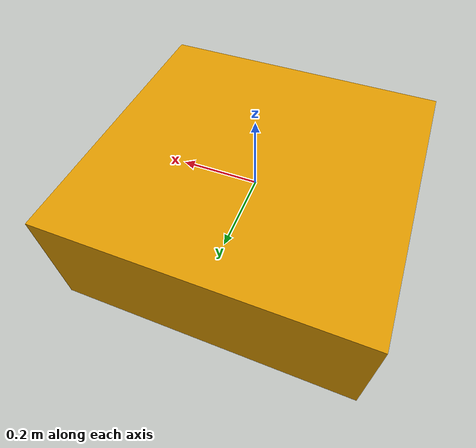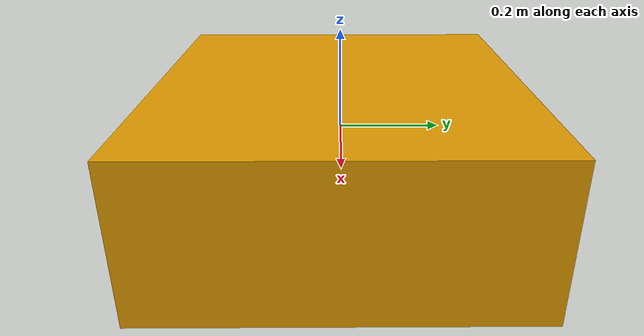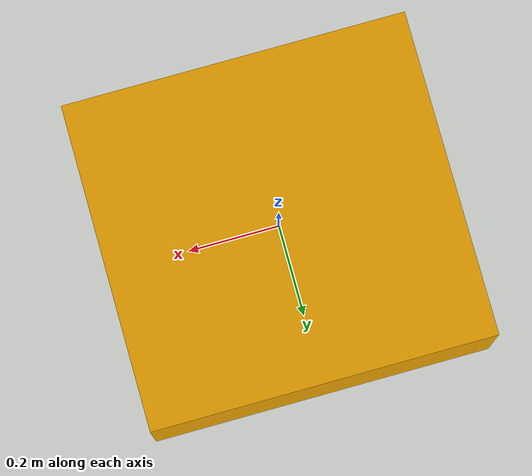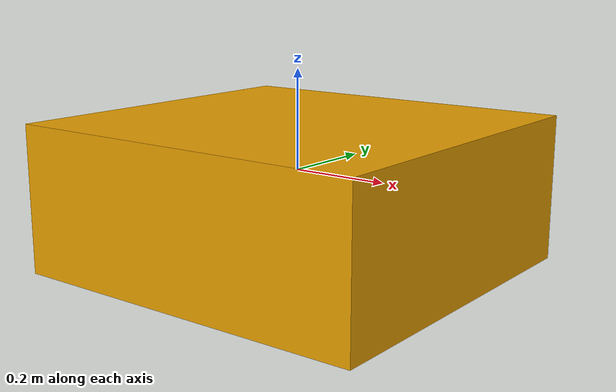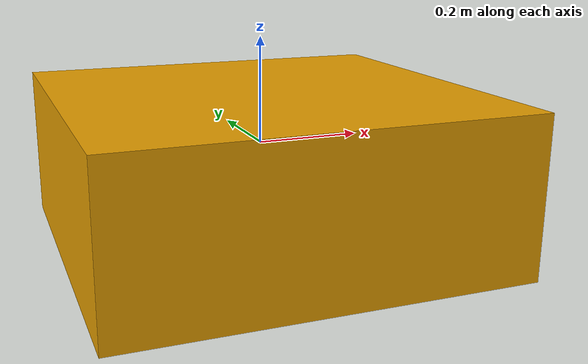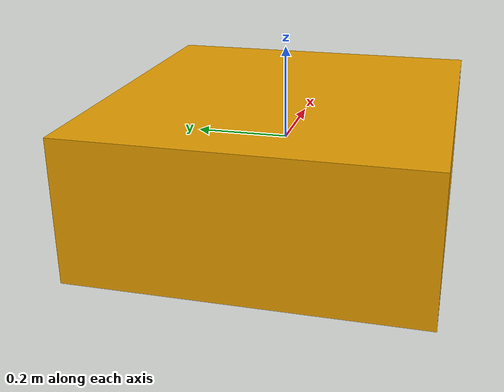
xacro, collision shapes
<?xml version='1.0' encoding='utf-8'?>
<robot name="Pam" xmlns:xacro="http://ros.org/wiki/xacro">
  <xacro:arg name="name" default="Pam"/>
  <xacro:property name="robot_namespace" value="$(arg name)"/>

  <link name='${robot_namespace}/base_link'>
    <inertial>
      <origin xyz='0 0 0' rpy='0 -0 0'/>
      <mass value='3.461'/>
      <inertia ixx='0.0324' ixy='0' ixz='0' iyy='0.0324' iyz='0' izz='0.0519'/>
    </inertial>
    <collision name='base_link_inertia_collision'>
      <origin xyz='0 0 -0.05' rpy='0 -0 0'/>
      <geometry>
        <box size='0.76 0.72 0.3'/>
      </geometry>
    </collision>
    <visual name='plate1_visual'>
      <origin xyz='0 0 0' rpy='0 -0 0'/>
      <geometry>
        <box size='0.14 0.14 0.001'/>
      </geometry>
    </visual>
    <visual name='plate2_visual'>
      <origin xyz='0 0 -0.04' rpy='0 -0 0'/>
      <geometry>
        <box size='0.14 0.14 0.001'/>
      </geometry>
    </visual>
    <visual name='plate3_visual'>
      <origin xyz='0 0 -0.09' rpy='0 -0 0'/>
      <geometry>
        <box size='0.14 0.14 0.001'/>
      </geometry>
    </visual>
    <visual name='plate4_visual'>
      <origin xyz='0.015 0 -0.13' rpy='0 -0 0'/>
      <geometry>
        <box size='0.17 0.14 0.001'/>
      </geometry>
    </visual>
    <visual name='brix_visual'>
      <origin xyz='0 0 -0.065' rpy='0 -0 0'/>
      <geometry>
        <box size='0.12 0.12 0.05'/>
      </geometry>
    </visual>
    <visual name='battery_visual'>
      <origin xyz='0 0 -0.11' rpy='0 -0 0'/>
      <geometry>
        <box size='0.14 0.08 0.04'/>
      </geometry>
    </visual>
    <visual name='leg1_visual'>
      <origin xyz='0.08 0.11 -0.158' rpy='-0.6 0 0'/>
      <geometry>
        <box size='0.04 0.1 0.001'/>
      </geometry>
    </visual>
    <visual name='leg2_visual'>
      <origin xyz='0.08 -0.11 -0.158' rpy='0.6 -0 0'/>
      <geometry>
        <box size='0.04 0.1 0.001'/>
      </geometry>
    </visual>
    <visual name='leg3_visual'>
      <origin xyz='-0.05 0.11 -0.158' rpy='-0.6 0 0'/>
      <geometry>
        <box size='0.04 0.1 0.001'/>
      </geometry>
    </visual>
    <visual name='leg4_visual'>
      <origin xyz='-0.05 -0.11 -0.158' rpy='0.6 -0 0'/>
      <geometry>
        <box size='0.04 0.1 0.001'/>
      </geometry>
    </visual>
    <visual name='antenna1_visual'>
      <origin xyz='0.05 -0.05 0.05' rpy='0 -0 0'/>
      <geometry>
        <cylinder radius='0.005' length='0.1'/>
      </geometry>
    </visual>
    <visual name='antenna2_visual'>
      <origin xyz='-0.05 -0.05 0.05' rpy='0 -0 0'/>
      <geometry>
        <cylinder radius='0.005' length='0.1'/>
      </geometry>
    </visual>
    <visual name='prop_guard1_visual'>
      <origin xyz='0.38 0 0.05' rpy='1.5708 -0 0'/>
      <geometry>
        <cylinder radius='0.002' length='0.48'/>
      </geometry>
    </visual>
    <visual name='prop_guard2_visual'>
      <origin xyz='0 0.36 0.05' rpy='0 1.5708 0'/>
      <geometry>
        <cylinder radius='0.002' length='0.52'/>
      </geometry>
    </visual>
    <visual name='prop_guard3_visual'>
      <origin xyz='-0.38 0 0.05' rpy='1.5708 -0 0'/>
      <geometry>
        <cylinder radius='0.002' length='0.48'/>
      </geometry>
    </visual>
    <visual name='prop_guard4_visual'>
      <origin xyz='0 -0.36 0.05' rpy='0 1.5708 0'/>
      <geometry>
        <cylinder radius='0.002' length='0.52'/>
      </geometry>
    </visual>
    <visual name='prop_guard5_visual'>
      <origin xyz='0.32 0.3 0.05' rpy='1.5708 0 0.7854'/>
      <geometry>
        <cylinder radius='0.002' length='0.17'/>
      </geometry>
    </visual>
    <visual name='prop_guard6_visual'>
      <origin xyz='-0.32 -0.3 0.05' rpy='1.5708 0 0.7854'/>
      <geometry>
        <cylinder radius='0.002' length='0.17'/>
      </geometry>
    </visual>
    <visual name='prop_guard7_visual'>
      <origin xyz='-0.32 0.3 0.05' rpy='1.5708 -0 -0.7854'/>
      <geometry>
        <cylinder radius='0.002' length='0.17'/>
      </geometry>
    </visual>
    <visual name='prop_guard8_visual'>
      <origin xyz='0.32 -0.3 0.05' rpy='1.5708 -0 -0.7854'/>
      <geometry>
        <cylinder radius='0.002' length='0.17'/>
      </geometry>
    </visual>
    <visual name='prop_guard9_visual'>
      <origin xyz='0.32 0.3 0.025' rpy='0 -0 0'/>
      <geometry>
        <cylinder radius='0.004' length='0.055'/>
      </geometry>
    </visual>
    <visual name='prop_guard10_visual'>
      <origin xyz='-0.32 0.3 0.025' rpy='0 -0 0'/>
      <geometry>
        <cylinder radius='0.004' length='0.055'/>
      </geometry>
    </visual>
    <visual name='prop_guard11_visual'>
      <origin xyz='0.32 -0.3 0.025' rpy='0 -0 0'/>
      <geometry>
        <cylinder radius='0.004' length='0.055'/>
      </geometry>
    </visual>
    <visual name='prop_guard12_visual'>
      <origin xyz='-0.32 -0.3 0.025' rpy='0 -0 0'/>
      <geometry>
        <cylinder radius='0.004' length='0.055'/>
      </geometry>
    </visual>
    <visual name='prop_guard13_visual'>
      <origin xyz='0.265 0.245 -0.005' rpy='1.5708 -0 -0.7854'/>
      <geometry>
        <cylinder radius='0.004' length='0.16'/>
      </geometry>
    </visual>
    <visual name='prop_guard14_visual'>
      <origin xyz='-0.265 -0.245 -0.005' rpy='1.5708 -0 -0.7854'/>
      <geometry>
        <cylinder radius='0.004' length='0.16'/>
      </geometry>
    </visual>
    <visual name='prop_guard15_visual'>
      <origin xyz='-0.265 0.245 -0.005' rpy='1.5708 0 0.7854'/>
      <geometry>
        <cylinder radius='0.004' length='0.16'/>
      </geometry>
    </visual>
    <visual name='prop_guard16_visual'>
      <origin xyz='0.265 -0.245 -0.005' rpy='1.5708 0 0.7854'/>
      <geometry>
        <cylinder radius='0.004' length='0.16'/>
      </geometry>
    </visual>
    <visual name='arm1_visual'>
      <origin xyz='0.13 0.12 -0.005' rpy='0 -0 0.74'/>
      <geometry>
        <box size='0.21 0.03 0.01'/>
      </geometry>
    </visual>
    <visual name='arm2_visual'>
      <origin xyz='0.13 -0.12 -0.005' rpy='0 0 -0.74'/>
      <geometry>
        <box size='0.21 0.03 0.01'/>
      </geometry>
    </visual>
    <visual name='arm3_visual'>
      <origin xyz='-0.13 0.12 -0.005' rpy='0 0 -0.74'/>
      <geometry>
        <box size='0.21 0.03 0.01'/>
      </geometry>
    </visual>
    <visual name='arm4_visual'>
      <origin xyz='-0.13 -0.12 -0.005' rpy='0 -0 0.74'/>
      <geometry>
        <box size='0.21 0.03 0.01'/>
      </geometry>
    </visual>
    <visual name='arm1a_visual'>
      <origin xyz='0.06 0.06 -0.025' rpy='0 -0 0.02'/>
      <geometry>
        <box size='0.02 0.02 0.03'/>
      </geometry>
    </visual>
    <visual name='arm2a_visual'>
      <origin xyz='0.06 -0.06 -0.025' rpy='0 -0 0.02'/>
      <geometry>
        <box size='0.02 0.02 0.03'/>
      </geometry>
    </visual>
    <visual name='arm3a_visual'>
      <origin xyz='-0.06 0.06 -0.025' rpy='0 -0 0.02'/>
      <geometry>
        <box size='0.02 0.02 0.03'/>
      </geometry>
    </visual>
    <visual name='arm4a_visual'>
      <origin xyz='-0.06 -0.06 -0.025' rpy='0 -0 0.02'/>
      <geometry>
        <box size='0.02 0.02 0.03'/>
      </geometry>
    </visual>
    <visual name='motor1_visual'>
      <origin xyz='0.2 0.18 0.02' rpy='0 -0 0'/>
      <geometry>
        <cylinder radius='0.02' length='0.04'/>
      </geometry>
    </visual>
    <visual name='motor2_visual'>
      <origin xyz='-0.2 0.18 0.02' rpy='0 -0 0'/>
      <geometry>
        <cylinder radius='0.02' length='0.04'/>
      </geometry>
    </visual>
    <visual name='motor3_visual'>
      <origin xyz='0.2 -0.18 0.02' rpy='0 -0 0'/>
      <geometry>
        <cylinder radius='0.02' length='0.04'/>
      </geometry>
    </visual>
    <visual name='motor4_visual'>
      <origin xyz='-0.2 -0.18 0.02' rpy='0 -0 0'/>
      <geometry>
        <cylinder radius='0.02' length='0.04'/>
      </geometry>
    </visual>
    <visual name='lightbar_visual'>
      <origin xyz='0.095 -0.06 -0.1' rpy='0 -0 0'/>
      <geometry>
        <box size='0.001 0.02 0.06'/>
      </geometry>
    </visual>
    <visual name='d435_dae_front_visual'>
      <origin xyz='0.075 0 -0.13' rpy='0 -0 0'/>
      <geometry>
        <mesh filename='package://coro_pam_sensor_config_1/meshes/realsense_d435.dae' scale='0.001 0.001 0.001'/>
      </geometry>
    </visual>
    <visual name='d435_dae_left_visual'>
      <origin xyz='0 0.07 -0.117' rpy='1.5708 -0 1.5708'/>
      <geometry>
        <mesh filename='package://coro_pam_sensor_config_1/meshes/realsense_d435.dae' scale='0.001 0.001 0.001'/>
      </geometry>
    </visual>
    <visual name='d435_dae_right_visual'>
      <origin xyz='0.02 -0.07 -0.117' rpy='1.5708 0 -1.5708'/>
      <geometry>
        <mesh filename='package://coro_pam_sensor_config_1/meshes/realsense_d435.dae' scale='0.001 0.001 0.001'/>
      </geometry>
    </visual>
  </link>
  <sensor name='imu_sensor' update_rate='250'>
    <parent link='${robot_namespace}/base_link'/>
    <origin xyz='0 0 0' rpy='0 -0 0'/>
  </sensor>
  <sensor name='air_pressure' update_rate='20'>
    <parent link='${robot_namespace}/base_link'/>
    <origin xyz='0 0 0' rpy='0 -0 0'/>
  </sensor>
  <sensor name='magnetometer' update_rate='20'>
    <parent link='${robot_namespace}/base_link'/>
    <origin xyz='0 0 0' rpy='0 -0 0'/>
  </sensor>
  <sensor name='rgbd_front' update_rate='30'>
    <parent link='${robot_namespace}/base_link'/>
    <origin xyz='0.105 0 -0.115' rpy='0 -0 0'/>
    <camera>
      <image width='640' height='360' format='R8G8B8' hfov='1.50098' near='0.01' far='300' />
    </camera>
  </sensor>
  <sensor name='rgbd_right' update_rate='30'>
    <parent link='${robot_namespace}/base_link'/>
    <origin xyz='0.01 -0.1 -0.115' rpy='1.5708 0 -1.5708'/>
    <camera>
      <image width='640' height='360' format='R8G8B8' hfov='1.50098' near='0.01' far='300' />
    </camera>
  </sensor>
  <sensor name='rgbd_left' update_rate='30'>
    <parent link='${robot_namespace}/base_link'/>
    <origin xyz='0.01 0.1 -0.115' rpy='1.5708 -0 1.5708'/>
    <camera>
      <image width='640' height='360' format='R8G8B8' hfov='1.50098' near='0.01' far='300' />
    </camera>
  </sensor>
  <sensor name='top_laser' update_rate='50'>
    <parent link='${robot_namespace}/base_link'/>
    <origin xyz='0 -0.03 0.06' rpy='0 1.57 0'/>
  </sensor>
  <sensor name='bottom_laser' update_rate='50'>
    <parent link='${robot_namespace}/base_link'/>
    <origin xyz='0 0 -0.14' rpy='0 -1.57 0'/>
  </sensor>
  <link name='${robot_namespace}/rotor_0'>
    <inertial>
      <origin xyz='0 0 0' rpy='0 -0 0'/>
      <mass value='0.024'/>
      <inertia ixx='1e-05' ixy='0' ixz='0' iyy='0.0004' iyz='0' izz='0.0004'/>
    </inertial>
    <collision name='rotor_0_collision'>
      <origin xyz='0 0 0' rpy='0 -0 0'/>
      <geometry>
        <cylinder radius='0.165' length='0.01'/>
      </geometry>
    </collision>
    <visual name='rotor_0_visual'>
      <origin xyz='0 0 0' rpy='0 -0 0'/>
      <geometry>
        <mesh filename='package://coro_pam_sensor_config_1/meshes/propeller_ccw.dae' scale='0.165 0.165 0.165'/>
      </geometry>
    </visual>
  </link>
  <link name='${robot_namespace}/rotor_1'>
    <inertial>
      <origin xyz='0 0 0' rpy='0 -0 0'/>
      <mass value='0.024'/>
      <inertia ixx='1e-05' ixy='0' ixz='0' iyy='0.0004' iyz='0' izz='0.0004'/>
    </inertial>
    <collision name='rotor_1_collision'>
      <origin xyz='0 0 0' rpy='0 -0 0'/>
      <geometry>
        <cylinder radius='0.165' length='0.01'/>
      </geometry>
    </collision>
    <visual name='rotor_1_visual'>
      <origin xyz='0 0 0' rpy='0 -0 0'/>
      <geometry>
        <mesh filename='package://coro_pam_sensor_config_1/meshes/propeller_ccw.dae' scale='0.165 0.165 0.165'/>
      </geometry>
    </visual>
  </link>
  <link name='${robot_namespace}/rotor_2'>
    <inertial>
      <origin xyz='0 0 0' rpy='0 -0 0'/>
      <mass value='0.024'/>
      <inertia ixx='1e-05' ixy='0' ixz='0' iyy='0.0004' iyz='0' izz='0.0004'/>
    </inertial>
    <collision name='rotor_2_collision'>
      <origin xyz='0 0 0' rpy='0 -0 0'/>
      <geometry>
        <cylinder radius='0.165' length='0.01'/>
      </geometry>
    </collision>
    <visual name='rotor_2_visual'>
      <origin xyz='0 0 0' rpy='0 -0 0'/>
      <geometry>
        <mesh filename='package://coro_pam_sensor_config_1/meshes/propeller_cw.dae' scale='0.165 0.165 0.165'/>
      </geometry>
    </visual>
  </link>
  <link name='${robot_namespace}/rotor_3'>
    <inertial>
      <origin xyz='0 0 0' rpy='0 -0 0'/>
      <mass value='0.024'/>
      <inertia ixx='1e-05' ixy='0' ixz='0' iyy='0.0004' iyz='0' izz='0.0004'/>
    </inertial>
    <collision name='rotor_3_collision'>
      <origin xyz='0 0 0' rpy='0 -0 0'/>
      <geometry>
        <cylinder radius='0.165' length='0.01'/>
      </geometry>
    </collision>
    <visual name='rotor_3_visual'>
      <origin xyz='0 0 0' rpy='0 -0 0'/>
      <geometry>
        <mesh filename='package://coro_pam_sensor_config_1/meshes/propeller_cw.dae' scale='0.165 0.165 0.165'/>
      </geometry>
    </visual>
  </link>
  <joint name='rotor_0_joint' type='revolute'>
    <origin xyz='0.2 -0.18 0.05' rpy='0 -0 0'/>
    <parent link='${robot_namespace}/base_link'/>
    <child link='${robot_namespace}/rotor_0'/>
    <dynamics damping='0' friction='0' />
    <axis xyz='0 0 1'/>
    <limit lower='-1e+16' upper='1e+16' effort='-1' velocity='-1'/>
  </joint>
  <joint name='rotor_1_joint' type='revolute'>
    <origin xyz='-0.2 0.18 0.05' rpy='0 -0 0'/>
    <parent link='${robot_namespace}/base_link'/>
    <child link='${robot_namespace}/rotor_1'/>
    <dynamics damping='0' friction='0' />
    <axis xyz='0 0 1'/>
    <limit lower='-1e+16' upper='1e+16' effort='-1' velocity='-1'/>
  </joint>
  <joint name='rotor_2_joint' type='revolute'>
    <origin xyz='0.2 0.18 0.05' rpy='0 -0 0'/>
    <parent link='${robot_namespace}/base_link'/>
    <child link='${robot_namespace}/rotor_2'/>
    <dynamics damping='0' friction='0' />
    <axis xyz='0 0 1'/>
    <limit lower='-1e+16' upper='1e+16' effort='-1' velocity='-1'/>
  </joint>
  <joint name='rotor_3_joint' type='revolute'>
    <origin xyz='-0.2 -0.18 0.05' rpy='0 -0 0'/>
    <parent link='${robot_namespace}/base_link'/>
    <child link='${robot_namespace}/rotor_3'/>
    <dynamics damping='0' friction='0' />
    <axis xyz='0 0 1'/>
    <limit lower='-1e+16' upper='1e+16' effort='-1' velocity='-1'/>
  </joint>
</robot>
